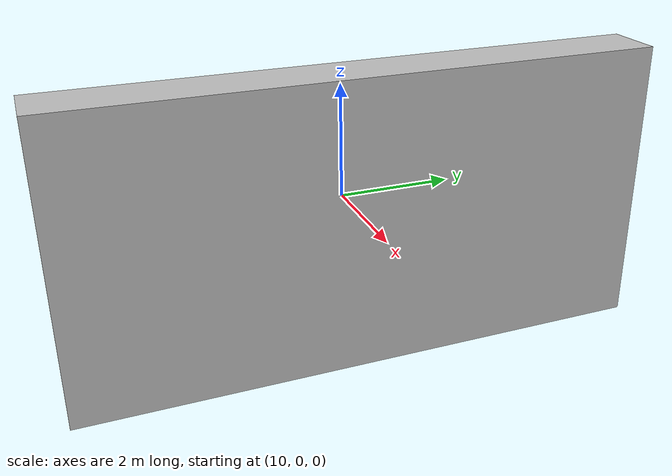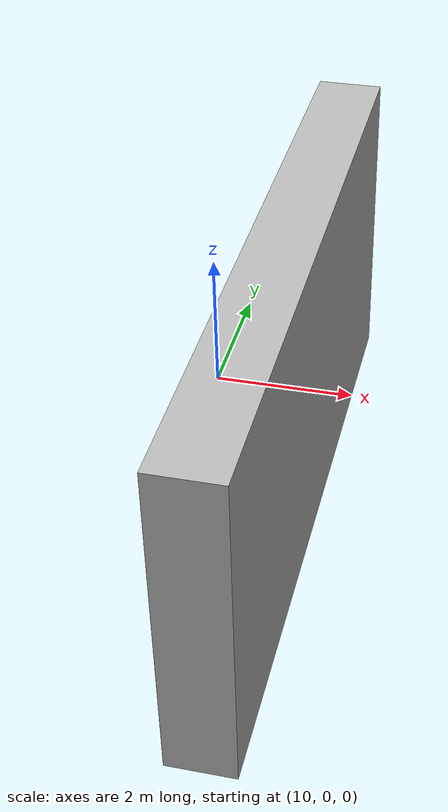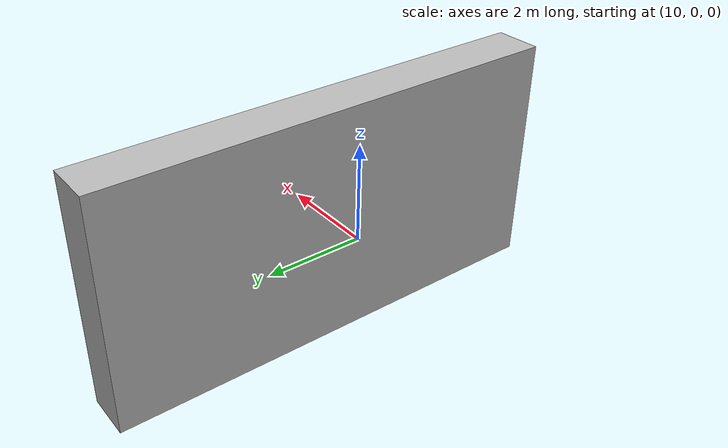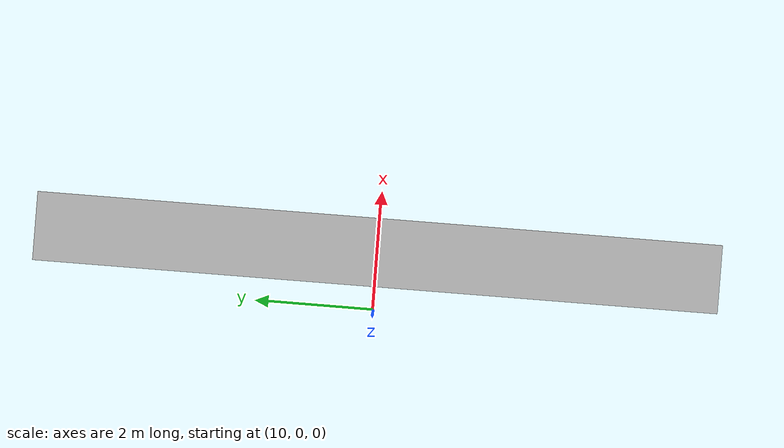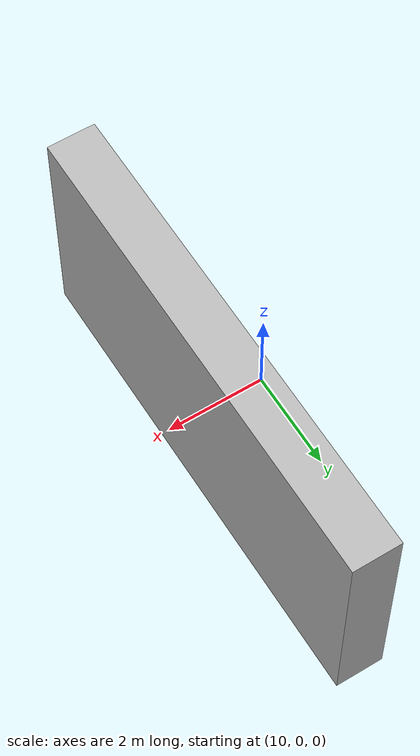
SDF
<?xml version="1.0"?>
<!-- World to test model -->
<sdf version="1.9"
    xmlns:xacro="http://ros.org/wiki/xacro">
    <world name="lotusim">
        <scene>
            <ambient>1.0 1.0 1.0</ambient>
            <background>0.8 0.8 0.8</background>
            <grid>1</grid>
        </scene>

        <physics type="ignore">
            <!-- This is <10fps  -->
            <max_step_size>0.2</max_step_size>
            <real_time_factor>1</real_time_factor>
            <real_time_update_rate>1</real_time_update_rate>
        </physics>

        <gravity>0 0 0</gravity>
        <plugin filename="gz-sim-physics-system" name="gz::sim::systems::Physics">
        </plugin>
        <plugin filename="gz-sim-user-commands-system" name="gz::sim::systems::UserCommands">
        </plugin>
        <plugin filename="gz-sim-scene-broadcaster-system" name="gz::sim::systems::SceneBroadcaster">
        </plugin>
        <plugin filename="wave_rao_plugin" name="liquidai::gazebo::WaveRaoPlugin">
            <debug>true</debug>
        </plugin>
        <plugin filename="render_plugin" name="liquidai::gazebo::RenderPlugin">
            <connection_protocol>udp</connection_protocol>
            <ip>127.0.0.1</ip>
            <port>23456</port>
        </plugin>

        <plugin filename="gazebo_step_control" name="step_control::GazeboStepControl">
            <enable_control>false</enable_control>
        </plugin>

        <plugin filename="gz_entity_management" name="entity_management::EntityManagement">
        </plugin>

        <plugin
            filename="gz_scheduling"
            name="scheduling_plugin::gz_scheduling">
            <debug>true</debug>
        </plugin>

        <plugin filename="gz-sim-imu-system"
            name="gz::sim::systems::Imu">
        </plugin>

        <model name="plane">
            <static>true</static>
            <pose>11 0 0 0 0 0</pose>
            <link name="link">
                <visual name="visual">
                    <geometry>
                        <box>
                            <size>1 10 5</size>
                        </box>
                    </geometry>
                    <material>
                        <emissive>1 1 1</emissive>
                    </material>
                </visual>
            </link>
        </model>
    </world>
</sdf>
